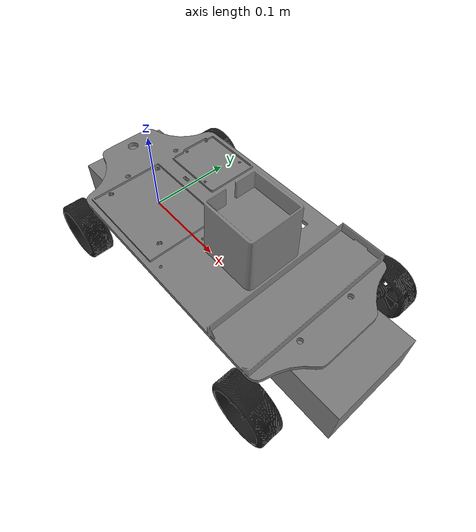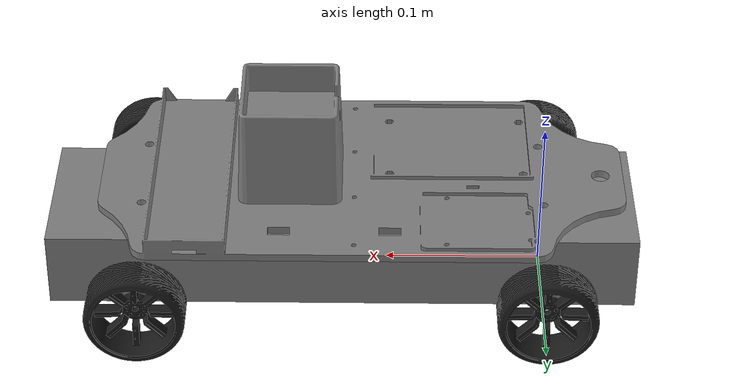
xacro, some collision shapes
<?xml version="1.0"?>
<robot xmlns:xacro="http://www.ros.org/wiki/xacro" >

    <xacro:include filename="robot_materials.xacro"></xacro:include>
    <xacro:include filename="wheel_macros.xacro"></xacro:include>
    <xacro:include filename="inertial_macros.xacro"></xacro:include>
    <!-- Hardware Dimensions -->
    <!-- Chassis Specifications -->
    <xacro:property name="chassis_length" value="0.376"/>
    <xacro:property name="chassis_width" value="0.100"/>
    <xacro:property name="chassis_height" value="0.050"/>
    <xacro:property name="chassis_mass" value="1.2"/>
    <!-- Wheel Specifications -->
    <xacro:property name="wheel_radius" value="0.032"/>
    <xacro:property name="wheel_length" value="0.024"/>
    <xacro:property name="wheel_mass" value="0.03"/>
    <xacro:property name="max_steer_angle" value="0.52"/> <!-- 30 Degrees turning radius -->
    <!-- Joint offsets -->
    <xacro:property name="track_width" value="0.182"/>
    <xacro:property name="wheel_base" value="0.257"/>
    <!-- Calculated Joint origins -->
    <xacro:property name="wheel_offset_y" value="${track_width / 2}"/>
    <xacro:property name="wheel_offset_z" value="${chassis_height / 2}"/>
    <!-- Rear wheels are at x=0. Front wheels are at x=wheel_base -->
    <!-- Base Link -->
    <link name="base_link">
    </link>
    <!-- Chassis Link-->
    <joint name="chassis_joint" type="fixed">
        <parent link="base_link"/>
        <child link="chassis_link"/>
        <origin xyz="${wheel_base / 2} 0 ${chassis_height / 2}"/>
    </joint>
    <link name="chassis_link">
        <visual>
            <geometry>
                <mesh filename="package://tamiya_rover_description/meshes/tt02d_chassis.stl" scale="0.001 0.001 0.001"/>
            </geometry>
            <origin xyz="0 0 0" rpy="0 0 0"/>
            <material name="gray"/>
        </visual>
        <collision>
            <geometry>
                <box size="${chassis_length} ${chassis_width} ${chassis_height}"/>
            </geometry>
        </collision>
        <xacro:inertial_box mass="${chassis_mass}" x="${chassis_length}" y="${chassis_width}" z="${chassis_height}">
            <origin xyz="0 0 0"/>
        </xacro:inertial_box>
    </link>

    <!-- Vetronics Deck Link -->
    <joint  name="vetronics_deck_joint" type="fixed">
        <parent link="chassis_link"/>
        <child link="vetronics_deck_link"/>
        <!-- z-offset to place it on top of the chassis -->
        <origin xyz="0 0 ${chassis_height / 2 + 0.011}" rpy="0 0 0"/>
    </joint>

    <link name="vetronics_deck_link">
        <visual>
            <geometry>
                <mesh filename="package://tamiya_rover_description/meshes/vetronics_deck.stl" scale="0.001 0.001 0.001"/>
            </geometry>
            <origin xyz="0 0 0" rpy="0 0 0"/>
            <material name="gray"/>
        </visual>
    </link>

    <!-- Rear Right Wheel Link -->
    <xacro:fixed_wheel prefix="rr" x_offset="0" y_reflect="-1" />
    <!-- Rear Left Wheel Link-->
    <xacro:fixed_wheel prefix="rl" x_offset="0" y_reflect="1" />
    <!-- Front Right Wheel Link -->
    <xacro:steered_wheel prefix="fr" x_offset="${wheel_base}" y_reflect="-1" />
    <!-- Front Left Wheel Link -->
    <xacro:steered_wheel prefix="fl" x_offset="${wheel_base}" y_reflect="1" />

</robot>

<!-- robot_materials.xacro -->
<robot xmlns:xacro="http://www.ros.org/wiki/xacro" >

    <material name="gray">
        <color rgba="0.5 0.5 0.5 1" />
    </material>

    <material name="black">
        <color rgba="0.1 0.1 0.1 1"/>
    </material>

</robot>

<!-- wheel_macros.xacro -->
<robot xmlns:xacro="http://www.ros.org/wiki/xacro">

    <!-- Fixed Wheel Macro -->
    <xacro:macro name="fixed_wheel" params="prefix x_offset y_reflect">
        <joint name="${prefix}_wheel_joint" type="continuous">
            <parent link="base_link"/>
            <child link="${prefix}_wheel_link"/>
            <origin xyz="${x_offset} ${y_reflect * wheel_offset_y} ${wheel_offset_z}" rpy="0 0 0"/>
            <axis xyz="0 1 0"/>
        </joint>

        <link name="${prefix}_wheel_link">
            <visual>
                <geometry>
                    <mesh filename="package://tamiya_rover_description/meshes/tt02d_wheel.stl" scale="0.001 0.001 0.001"/>
                </geometry>
                <!-- Dinamically flip the mesh -->
                <origin xyz="0 0 0" rpy="0 0 ${(1 - y_reflect) / 2 * pi}"/>
                <material name="black"/>
            </visual>
            <collision>
                <geometry>
                    <cylinder radius="${wheel_radius}" length="${wheel_length}"/>
                </geometry>
                <origin xyz="0 0 0" rpy="-${pi / 2} 0 0"/>
                <material name="black"/>
            </collision>
            <xacro:inertial_cylinder mass="${wheel_mass}" length="${wheel_length}" radius="${wheel_radius}">
                <origin xyz="0 0 0"/>
            </xacro:inertial_cylinder>
        </link>

        <!-- Tire Friction -->
        <gazebo reference="${prefix}_wheel_link">
            <mu1>0.9</mu1>
            <mu2>0.9</mu2>
            <kp>100000000.0</kp>
            <kd>1.0</kd>
        </gazebo>

    </xacro:macro>

    <!-- Steered Wheel Macro -->
     <xacro:macro name="steered_wheel" params="prefix x_offset y_reflect">
        <!-- Steering Knuckle -->
        <joint name="${prefix}_steer_joint" type="revolute">
            <parent link="base_link"/>
            <child link="${prefix}_steer_link"/>
            <origin xyz="${x_offset} ${y_reflect * wheel_offset_y} ${wheel_offset_z}"/>
            <axis xyz="0 0 1"/>
            <limit lower="-${max_steer_angle}" upper="${max_steer_angle}" effort="10.0" velocity="5.0"/>
        </joint>

        <!-- Steering Knuckle Inertial Tag for simulation -->
        <link name="${prefix}_steer_link">
            <xacro:inertial_box mass="0.01" x="0.02" y="0.02" z="0.02">
                <origin xyz="0 0 0"/>
            </xacro:inertial_box>
        </link>

        <!-- Wheel -->
        <joint name="${prefix}_wheel_joint" type="continuous">
            <parent link="${prefix}_steer_link"/>
            <child link="${prefix}_wheel_link"/>
            <origin xyz="0 0 0" rpy="0 0 0"/>
            <axis xyz="0 1 0"/>
        </joint>

        <link name="${prefix}_wheel_link">
            <visual>
                <geometry>
                    <mesh filename="package://tamiya_rover_description/meshes/tt02d_wheel.stl" scale="0.001 0.001 0.001"/>
                </geometry>
                <!-- Dinamically flip the mesh -->
                <origin xyz="0 0 0" rpy="0 0 ${(1 - y_reflect) / 2 * pi}"/>
                <material name="black"/>
            </visual>
            <collision>
                <geometry>
                    <cylinder radius="${wheel_radius}" length="${wheel_length}"/>
                </geometry>
                <origin xyz="0 0 0" rpy="-${pi / 2} 0 0"/>
            </collision>
            <xacro:inertial_cylinder mass="${wheel_mass}" length="${wheel_length}" radius="${wheel_radius}">
                <origin xyz="0 0 0"/>
            </xacro:inertial_cylinder>
        </link>

        <gazebo reference="${prefix}_wheel_link">
            <mu1>0.9</mu1>
            <mu2>0.9</mu2>
            <kp>100000000.0</kp>
            <kd>1.0</kd>
        </gazebo>

     </xacro:macro>
</robot>

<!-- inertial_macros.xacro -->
<robot xmlns:xacro="http://www.ros.org/wiki/xacro" >

    <!-- File created by Josh Newans from Articulated Robotics -->
    <!-- Specify some standard inertial calculations https://en.wikipedia.org/wiki/List_of_moments_of_inertia -->
    <!-- These make use of xacro's mathematical functionality -->

    <xacro:macro name="inertial_box" params="mass x y z *origin">
        <inertial>
            <xacro:insert_block name="origin"/>
            <mass value="${mass}" />
            <inertia ixx="${(1/12) * mass * (y*y+z*z)}" ixy="0.0" ixz="0.0"
                    iyy="${(1/12) * mass * (x*x+z*z)}" iyz="0.0"
                    izz="${(1/12) * mass * (x*x+y*y)}" />
        </inertial>
    </xacro:macro>

    <xacro:macro name="inertial_cylinder" params="mass length radius *origin">
        <inertial>
            <xacro:insert_block name="origin"/>
            <mass value="${mass}" />
            <inertia ixx="${(1/12) * mass * (3*radius*radius + length*length)}" ixy="0.0" ixz="0.0"
                    iyy="${(1/12) * mass * (3*radius*radius + length*length)}" iyz="0.0"
                    izz="${(1/2) * mass * (radius*radius)}" />
        </inertial>
    </xacro:macro>

</robot>
